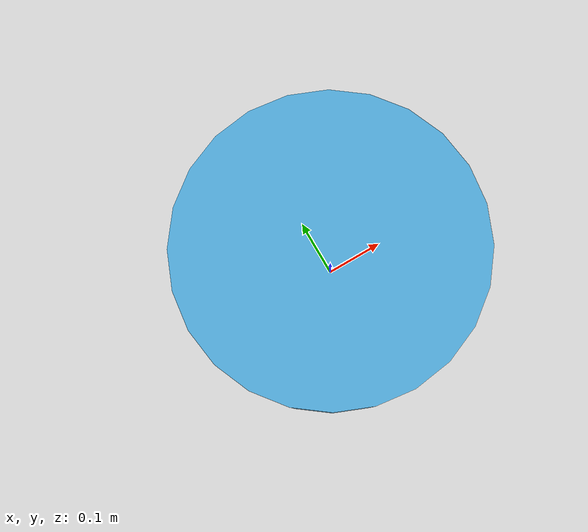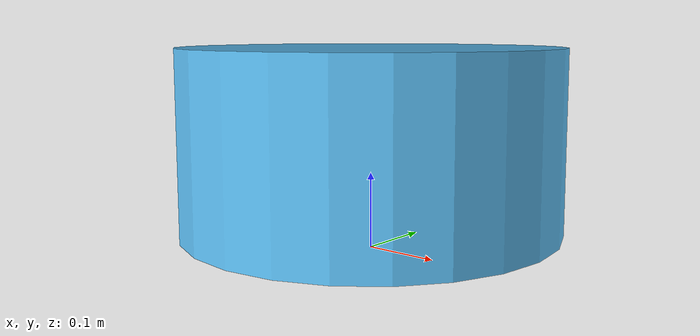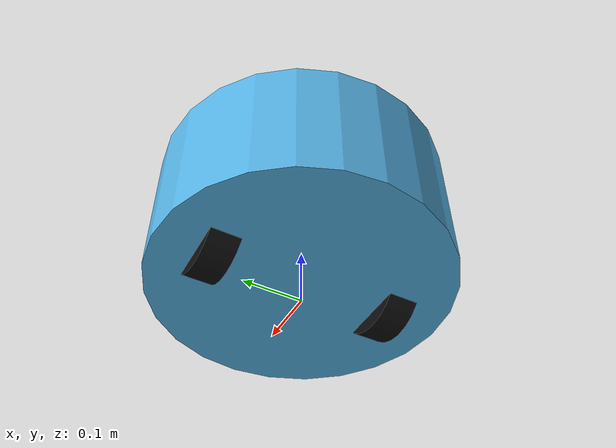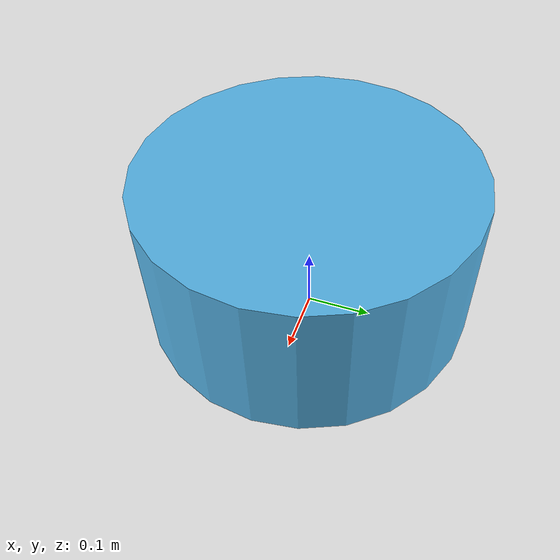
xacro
<?xml version="1.0"?>
<robot name="rav_platform" xmlns:xacro="http://www.ros.org/wiki/xacro">

  <!-- Base Temi Platform -->
  <xacro:property name="platform_diameter" value="0.50"/>
  <xacro:property name="platform_radius" value="${platform_diameter/2.0}"/>
  <xacro:property name="platform_height" value="0.24"/>

  <!-- Rodas -->
  <xacro:property name="wheel_radius" value="0.08"/>
  <xacro:property name="wheel_width"  value="0.05"/>

  <!-- Mantido como você colocou -->
  <xacro:property name="wheel_y" value="${platform_radius + wheel_width/2.0 - 0.43}"/>
  <xacro:property name="wheel_z" value="${wheel_radius}"/>

  <!-- raiz -->
  <link name="base_link"/>

  <link name="platform_base_link">
    <visual>
      <origin xyz="0 0 ${platform_height/2.0 + wheel_width/2.0}" rpy="0 0 0"/>
      <geometry>
        <cylinder radius="${platform_radius}" length="${platform_height}"/>
      </geometry>
    </visual>

    <collision>
      <origin xyz="0 0 ${platform_height/2.0 + wheel_width/2.0}" rpy="0 0 0"/>
      <geometry>
        <cylinder radius="${platform_radius}" length="${platform_height}"/>
      </geometry>
    </collision>

    <inertial>
      <origin xyz="0 0 ${platform_height/2.0 + wheel_width/2.0}" rpy="0 0 0"/>
      <mass value="35.0"/>
      <inertia ixx="1.0" ixy="0.0" ixz="0.0" iyy="1.0" iyz="0.0" izz="1.0"/>
    </inertial>
  </link>

  <joint name="base_to_platform" type="fixed">
    <parent link="base_link"/>
    <child link="platform_base_link"/>
    <origin xyz="0 0 0" rpy="0 0 0"/>
  </joint>

  <!-- Roda esquerda -->
  <link name="wheel_left_link">
    <visual>
      <!-- NÃO coloca xyz aqui pra não duplicar deslocamento -->
      <!-- Mantido seu rpy -->
      <origin xyz="0 0 0" rpy="0 1.5708 1.5708"/>
      <geometry>
        <cylinder radius="${wheel_radius}" length="${wheel_width}"/>
      </geometry>
      <material name="wheel_black">
        <color rgba="0.05 0.05 0.05 1.0"/>
      </material>
    </visual>
  </link>

  <joint name="wheel_left_joint" type="continuous">
    <parent link="platform_base_link"/>
    <child link="wheel_left_link"/>
    <!-- MANTIDO: a posição escolhida por você -->
    <origin xyz="0 ${wheel_y} ${wheel_z}" rpy="0 0 0"/>
    <axis xyz="0 1 0"/>
  </joint>

  <!-- Roda direita -->
  <link name="wheel_right_link">
    <visual>
      <origin xyz="0 0 0" rpy="0 1.5708 1.5708"/>
      <geometry>
        <cylinder radius="${wheel_radius}" length="${wheel_width}"/>
      </geometry>
      <material name="wheel_black">
        <color rgba="0.05 0.05 0.05 1.0"/>
      </material>
    </visual>
  </link>

  <joint name="wheel_right_joint" type="continuous">
    <parent link="platform_base_link"/>
    <child link="wheel_right_link"/>
    <!-- MANTIDO: a posição escolhida por você -->
    <origin xyz="0 ${-wheel_y} ${wheel_z}" rpy="0 0 0"/>
    <axis xyz="0 1 0"/>
  </joint>

</robot>
